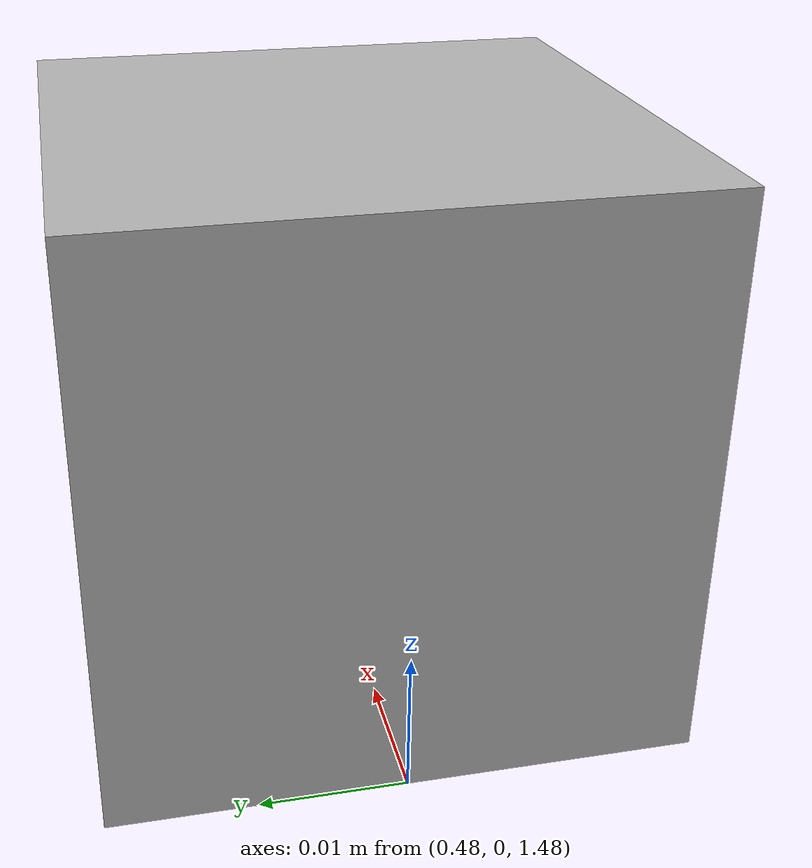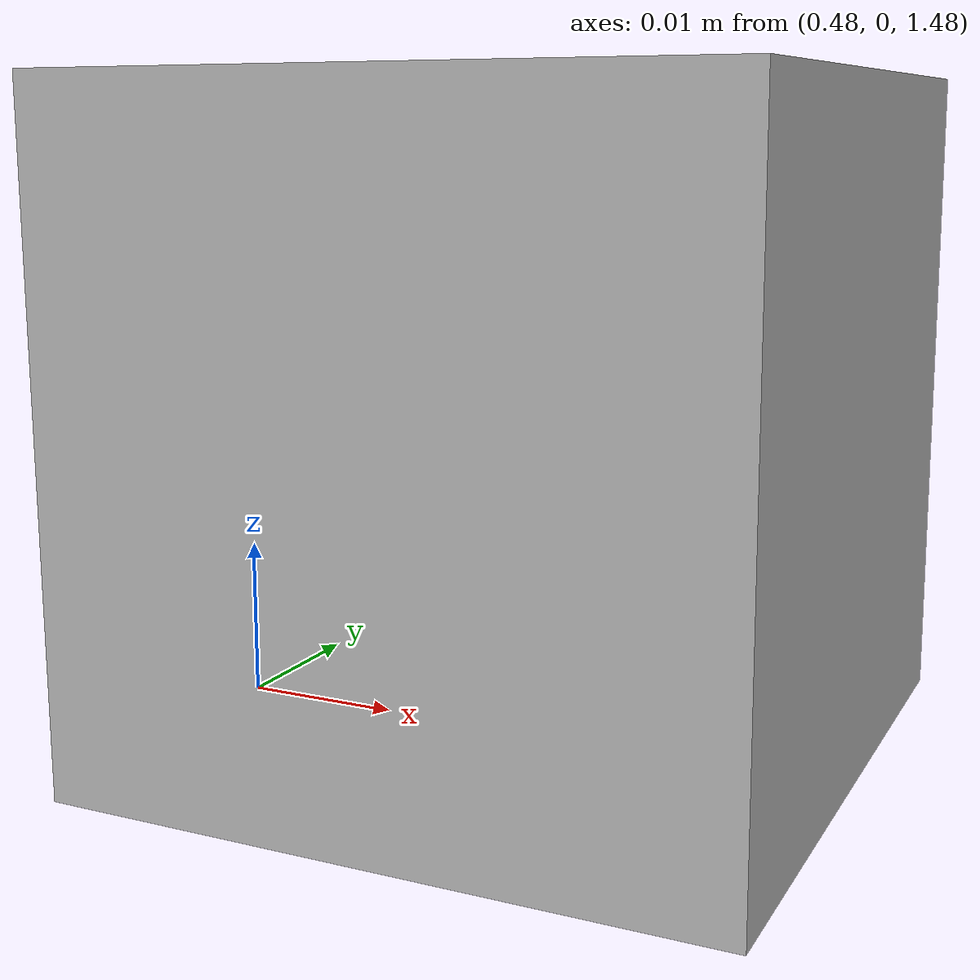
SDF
<?xml version="1.0" ?>
<sdf version="1.6">
    <model name="box">
        <static>true</static>
        <link name="link">
            <pose frame="">0.5 0 1.5 0 0 0</pose>
            <inertial>
                <pose frame="">0 0 0 0 0 0</pose>
                <mass>0.1</mass>
                <inertia>
                    <ixx>1</ixx>
                    <ixy>0</ixy>
                    <ixz>0</ixz>
                    <iyy>1</iyy>
                    <iyz>0</iyz>
                    <izz>1</izz>
                </inertia>
            </inertial>

            <collision name="collision">
                <geometry>
                    <box>
                        <size>0.04 0.04 0.04</size>
                    </box>
                </geometry>
            </collision>
            <visual name="visual">
                <geometry>
                    <box>
                        <size>0.04 0.04 0.04</size>
                    </box>
                </geometry>
                <material>
                </material>
            </visual>
        </link>
    </model>
</sdf>
